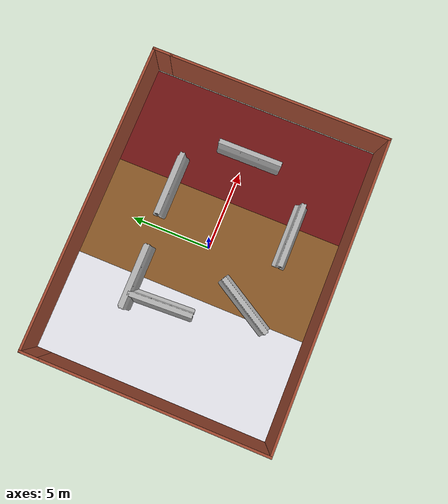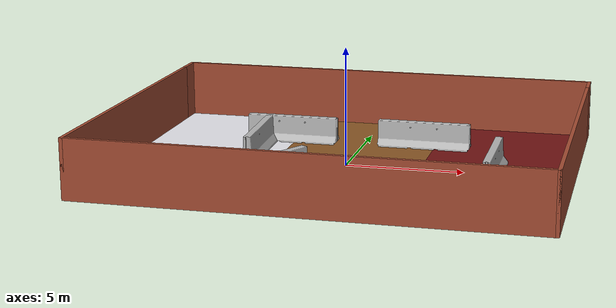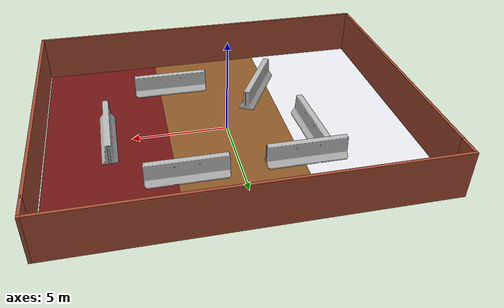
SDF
<?xml version="1.0" ?>
<sdf version='1.7'>
  <world name='default'>
    <light name='sun' type='directional'>
      <cast_shadows>0</cast_shadows>
      <pose>0 0 10 0 -0 0</pose>
      <diffuse>0.9 0.9 0.9 1</diffuse>
      <specular>0.1 0.1 0.1 1</specular>
      <attenuation>
        <range>1000</range>
        <constant>0.9</constant>
        <linear>0.01</linear>
        <quadratic>0.001</quadratic>
      </attenuation>
      <direction>-0.5 0.1 -0.9</direction>
      <spot>
        <inner_angle>0</inner_angle>
        <outer_angle>0</outer_angle>
        <falloff>0</falloff>
      </spot>
    </light>
    <physics type='ode'>
      <max_step_size>0.002</max_step_size>
      <real_time_factor>1</real_time_factor>
      <real_time_update_rate>500</real_time_update_rate>
    </physics>
    <scene>
      <ambient>0.5 0.5 0.5 1</ambient>
      <background>0.7 0.7 0.7 1</background>
      <shadows>false</shadows>
      <grid>false</grid>
    </scene>
    <model name='floor_tiles'>
      <static>1</static>
      <pose>-6.235 0 0 0 0 0</pose>
      <link name='link'>
        <collision name='collision'>
          <geometry><box><size>6.23 14.7 0.02</size></box></geometry>
          <surface><friction><ode><mu>0.6</mu><mu2>0.6</mu2></ode></friction></surface>
        </collision>
        <visual name='visual'>
          <geometry><box><size>6.23 14.7 0.02</size></box></geometry>
          <material>
            <ambient>0.92 0.92 0.95 1</ambient>
            <diffuse>0.92 0.92 0.95 1</diffuse>
            <specular>0.3 0.3 0.3 1</specular>
          </material>
        </visual>
      </link>
    </model>
    <model name='floor_wood'>
      <static>1</static>
      <pose>0 0 0 0 0 0</pose>
      <link name='link'>
        <collision name='collision'>
          <geometry><box><size>6.24 14.7 0.02</size></box></geometry>
          <surface><friction><ode><mu>0.8</mu><mu2>0.8</mu2></ode></friction></surface>
        </collision>
        <visual name='visual'>
          <geometry><box><size>6.24 14.7 0.02</size></box></geometry>
          <material>
            <ambient>0.55 0.35 0.15 1</ambient>
            <diffuse>0.55 0.35 0.15 1</diffuse>
            <specular>0.1 0.08 0.05 1</specular>
          </material>
        </visual>
      </link>
    </model>
    <model name='floor_carpet'>
      <static>1</static>
      <pose>6.235 0 0 0 0 0</pose>
      <link name='link'>
        <collision name='collision'>
          <geometry><box><size>6.23 14.7 0.02</size></box></geometry>
          <surface><friction><ode><mu>1.5</mu><mu2>1.5</mu2></ode></friction></surface>
        </collision>
        <visual name='visual'>
          <geometry><box><size>6.23 14.7 0.02</size></box></geometry>
          <material>
            <ambient>0.45 0.08 0.08 1</ambient>
            <diffuse>0.45 0.08 0.08 1</diffuse>
            <specular>0.02 0.02 0.02 1</specular>
          </material>
        </visual>
      </link>
    </model>
    <model name='first__map'>
      <pose>0.055464 -0.011717 0 0 -0 0</pose>
      <link name='Wall_4'>
        <collision name='Wall_4_Collision'>
          <geometry><box><size>13.75 0.15 2.5</size></box></geometry>
          <pose>0 0 1.25 0 -0 0</pose>
          <max_contacts>10</max_contacts>
          <surface><contact><ode/></contact><bounce/><friction><torsional><ode/></torsional><ode/></friction></surface>
        </collision>
        <visual name='Wall_4_Visual'>
          <pose>0 0 1.25 0 -0 0</pose>
          <geometry><box><size>13.75 0.15 2.5</size></box></geometry>
          <material><script><uri>file://media/materials/scripts/gazebo.material</uri><name>Gazebo/Bricks</name></script><ambient>1 1 1 1</ambient></material>
          <meta><layer>0</layer></meta>
        </visual>
        <pose>-9.425 -0.55 0 0 -0 -1.5708</pose>
        <self_collide>0</self_collide><enable_wind>0</enable_wind><kinematic>0</kinematic>
      </link>
      <link name='Wall_5'>
        <collision name='Wall_5_Collision'>
          <geometry><box><size>19 0.15 2.5</size></box></geometry>
          <pose>0 0 1.25 0 -0 0</pose>
          <max_contacts>10</max_contacts>
          <surface><contact><ode/></contact><bounce/><friction><torsional><ode/></torsional><ode/></friction></surface>
        </collision>
        <visual name='Wall_5_Visual'>
          <pose>0 0 1.25 0 -0 0</pose>
          <geometry><box><size>19 0.15 2.5</size></box></geometry>
          <material><script><uri>file://media/materials/scripts/gazebo.material</uri><name>Gazebo/Bricks</name></script><ambient>1 1 1 1</ambient></material>
          <meta><layer>0</layer></meta>
        </visual>
        <pose>0 -7.35 0 0 -0 0</pose>
        <self_collide>0</self_collide><enable_wind>0</enable_wind><kinematic>0</kinematic>
      </link>
      <link name='Wall_6'>
        <collision name='Wall_6_Collision'>
          <geometry><box><size>13.75 0.15 2.5</size></box></geometry>
          <pose>0 0 1.25 0 -0 0</pose>
          <max_contacts>10</max_contacts>
          <surface><contact><ode/></contact><bounce/><friction><torsional><ode/></torsional><ode/></friction></surface>
        </collision>
        <visual name='Wall_6_Visual'>
          <pose>0 0 1.25 0 -0 0</pose>
          <geometry><box><size>13.75 0.15 2.5</size></box></geometry>
          <material><script><uri>file://media/materials/scripts/gazebo.material</uri><name>Gazebo/Bricks</name></script><ambient>1 1 1 1</ambient></material>
          <meta><layer>0</layer></meta>
        </visual>
        <pose>9.425 -0.55 0 0 -0 1.5708</pose>
        <self_collide>0</self_collide><enable_wind>0</enable_wind><kinematic>0</kinematic>
      </link>
      <link name='Wall_7'>
        <collision name='Wall_7_Collision'>
          <geometry><box><size>1.25 0.15 2.5</size></box></geometry>
          <pose>0 0 1.25 0 -0 0</pose>
          <max_contacts>10</max_contacts>
          <surface><contact><ode/></contact><bounce/><friction><torsional><ode/></torsional><ode/></friction></surface>
        </collision>
        <visual name='Wall_7_Visual'>
          <pose>0 0 1.25 0 -0 0</pose>
          <geometry><box><size>1.25 0.15 2.5</size></box></geometry>
          <material><script><uri>file://media/materials/scripts/gazebo.material</uri><name>Gazebo/Bricks</name></script><ambient>1 1 1 1</ambient></material>
          <meta><layer>0</layer></meta>
        </visual>
        <pose>9.425 6.8 0 0 -0 1.5708</pose>
        <self_collide>0</self_collide><enable_wind>0</enable_wind><kinematic>0</kinematic>
      </link>
      <link name='Wall_8'>
        <collision name='Wall_8_Collision'>
          <geometry><box><size>19 0.15 2.5</size></box></geometry>
          <pose>0 0 1.25 0 -0 0</pose>
          <max_contacts>10</max_contacts>
          <surface><contact><ode/></contact><bounce/><friction><torsional><ode/></torsional><ode/></friction></surface>
        </collision>
        <visual name='Wall_8_Visual'>
          <pose>0 0 1.25 0 -0 0</pose>
          <geometry><box><size>19 0.15 2.5</size></box></geometry>
          <material><script><uri>file://media/materials/scripts/gazebo.material</uri><name>Gazebo/Bricks</name></script><ambient>1 1 1 1</ambient></material>
          <meta><layer>0</layer></meta>
        </visual>
        <pose>0 7.35 0 0 -0 3.14159</pose>
        <self_collide>0</self_collide><enable_wind>0</enable_wind><kinematic>0</kinematic>
      </link>
      <link name='Wall_9'>
        <collision name='Wall_9_Collision'>
          <geometry><box><size>1.25 0.15 2.5</size></box></geometry>
          <pose>0 0 1.25 0 -0 0</pose>
          <max_contacts>10</max_contacts>
          <surface><contact><ode/></contact><bounce/><friction><torsional><ode/></torsional><ode/></friction></surface>
        </collision>
        <visual name='Wall_9_Visual'>
          <pose>0 0 1.25 0 -0 0</pose>
          <geometry><box><size>1.25 0.15 2.5</size></box></geometry>
          <material><script><uri>file://media/materials/scripts/gazebo.material</uri><name>Gazebo/Bricks</name></script><ambient>1 1 1 1</ambient></material>
          <meta><layer>0</layer></meta>
        </visual>
        <pose>-9.425 6.8 0 0 -0 -1.5708</pose>
        <self_collide>0</self_collide><enable_wind>0</enable_wind><kinematic>0</kinematic>
      </link>
      <static>1</static>
    </model>
    <model name='jersey_barrier'>
      <static>1</static>
      <link name='link'>
        <visual name='visual'><geometry><mesh><uri>model://jersey_barrier/meshes/jersey_barrier.dae</uri></mesh></geometry></visual>
        <collision name='upright'><pose>0 0 0.5715 0 -0 0</pose><geometry><box><size>4.06542 0.3063 1.143</size></box></geometry></collision>
        <collision name='base'><pose>0 0 0.032258 0 -0 0</pose><geometry><box><size>4.06542 0.8107 0.064516</size></box></geometry></collision>
      </link>
      <pose>2.65861 3.59614 0 0 -0 0</pose>
    </model>
    <model name='jersey_barrier_0'>
      <static>1</static>
      <link name='link'>
        <visual name='visual'><geometry><mesh><uri>model://jersey_barrier/meshes/jersey_barrier.dae</uri></mesh></geometry></visual>
        <collision name='upright'><pose>0 0 0.5715 0 -0 0</pose><geometry><box><size>4.06542 0.3063 1.143</size></box></geometry></collision>
        <collision name='base'><pose>0 0 0.032258 0 -0 0</pose><geometry><box><size>4.06542 0.8107 0.064516</size></box></geometry></collision>
      </link>
      <pose>2.46748 -4.29572 0 0 -0 0</pose>
    </model>
    <model name='jersey_barrier_0_clone'>
      <static>1</static>
      <link name='link'>
        <visual name='visual'><geometry><mesh><uri>model://jersey_barrier/meshes/jersey_barrier.dae</uri></mesh></geometry></visual>
        <collision name='upright'><pose>0 0 0.5715 0 -0 0</pose><geometry><box><size>4.06542 0.3063 1.143</size></box></geometry></collision>
        <collision name='base'><pose>0 0 0.032258 0 -0 0</pose><geometry><box><size>4.06542 0.8107 0.064516</size></box></geometry></collision>
      </link>
      <pose>6.19212 -0.171686 0 0 0 -1.56399</pose>
    </model>
    <model name='jersey_barrier_0_clone_0'>
      <static>1</static>
      <link name='link'>
        <visual name='visual'><geometry><mesh><uri>model://jersey_barrier/meshes/jersey_barrier.dae</uri></mesh></geometry></visual>
        <collision name='upright'><pose>0 0 0.5715 0 -0 0</pose><geometry><box><size>4.06542 0.3063 1.143</size></box></geometry></collision>
        <collision name='base'><pose>0 0 0.032258 0 -0 0</pose><geometry><box><size>4.06542 0.8107 0.064516</size></box></geometry></collision>
      </link>
      <pose>-3.25694 3.39659 0 0 -0 0</pose>
    </model>
    <model name='jersey_barrier_0_clone_1'>
      <static>1</static>
      <link name='link'>
        <visual name='visual'><geometry><mesh><uri>model://jersey_barrier/meshes/jersey_barrier.dae</uri></mesh></geometry></visual>
        <collision name='upright'><pose>0 0 0.5715 0 -0 0</pose><geometry><box><size>4.06542 0.3063 1.143</size></box></geometry></collision>
        <collision name='base'><pose>0 0 0.032258 0 -0 0</pose><geometry><box><size>4.06542 0.8107 0.064516</size></box></geometry></collision>
      </link>
      <pose>-4.22053 1.36421 0 0 0 -1.52479</pose>
    </model>
    <model name='jersey_barrier_0_clone_2'>
      <static>1</static>
      <link name='link'>
        <visual name='visual'><geometry><mesh><uri>model://jersey_barrier/meshes/jersey_barrier.dae</uri></mesh></geometry></visual>
        <collision name='upright'><pose>0 0 0.5715 0 -0 0</pose><geometry><box><size>4.06542 0.3063 1.143</size></box></geometry></collision>
        <collision name='base'><pose>0 0 0.032258 0 -0 0</pose><geometry><box><size>4.06542 0.8107 0.064516</size></box></geometry></collision>
      </link>
      <pose>-2.41649 -3.22462 0 0 0 -2.1045</pose>
    </model>
    <gravity>0 0 -9.8</gravity>
    <magnetic_field>6e-06 2.3e-05 -4.2e-05</magnetic_field>
    <atmosphere type='adiabatic'/>
    <gui fullscreen='0'>
      <camera name='user_camera'>
        <pose>0 -22 20 0 0.75 1.5708</pose>
        <view_controller>orbit</view_controller>
        <projection_type>perspective</projection_type>
      </camera>
    </gui>
  </world>
</sdf>
